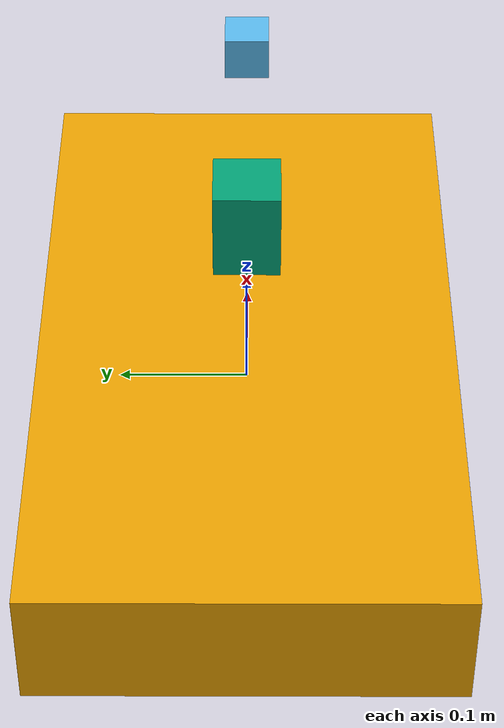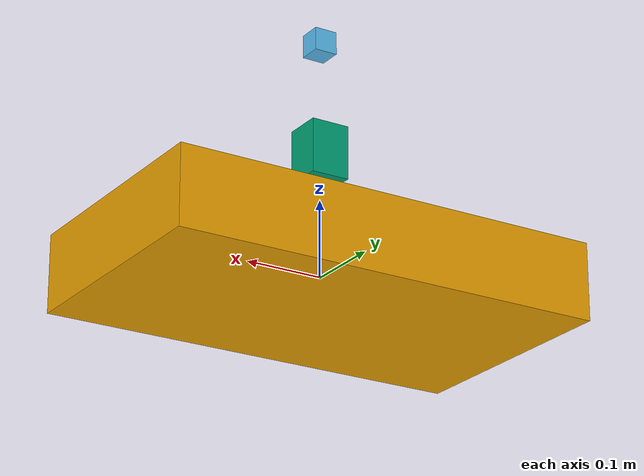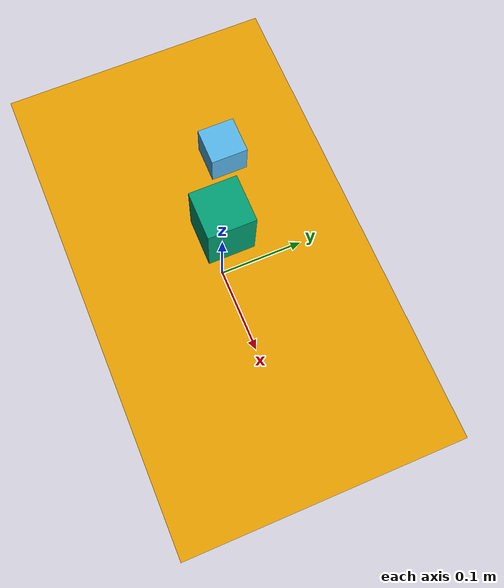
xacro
<?xml version="1.0"?>
<robot name="track_racecar"
  xmlns:xacro="http://www.ros.org/wiki/xacro">

  <link name="base_link">
    <visual>
      <origin xyz="0 0 0" rpy="0 0 0" />
      <geometry>
        <box size="0.56 0.32 0.1" />
      </geometry>
    </visual>
  </link>

  <link name="camera">
    <visual>
      <origin xyz="0 0 0" rpy="0 0 0" />
      <geometry>
        <box size="0.03 0.03 0.03" />
      </geometry>
    </visual>
  </link>

  <joint name="camera_joint" type="fixed">
    <parent link="base_link" />
    <child link="camera" />
    <origin xyz="0 0 0.31" rpy="0 0 0" />
  </joint>

  <link name="lidar">
    <visual>
      <origin xyz="0 0 0" rpy="0 0 0" />
      <geometry>
        <box size="0.05 0.05 0.07" />
      </geometry>
    </visual>
  </link>

  <joint name="lidar_joint" type="fixed">
    <parent link="base_link" />
    <child link="lidar" />
    <origin xyz="0 0 0.16" rpy="0 0 0" />
  </joint>

</robot>
